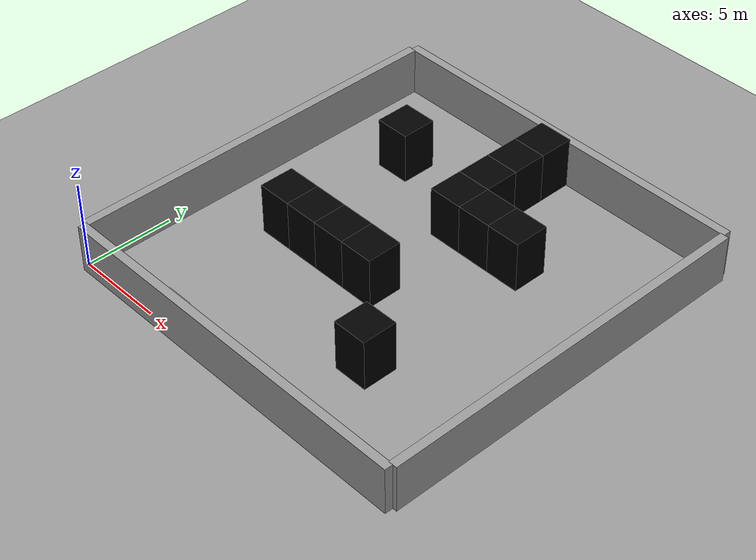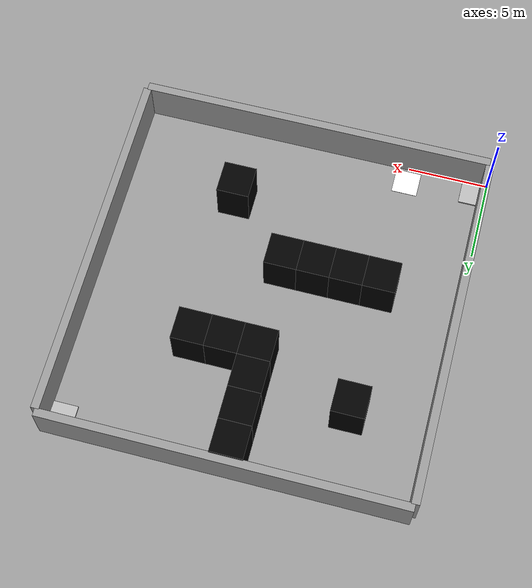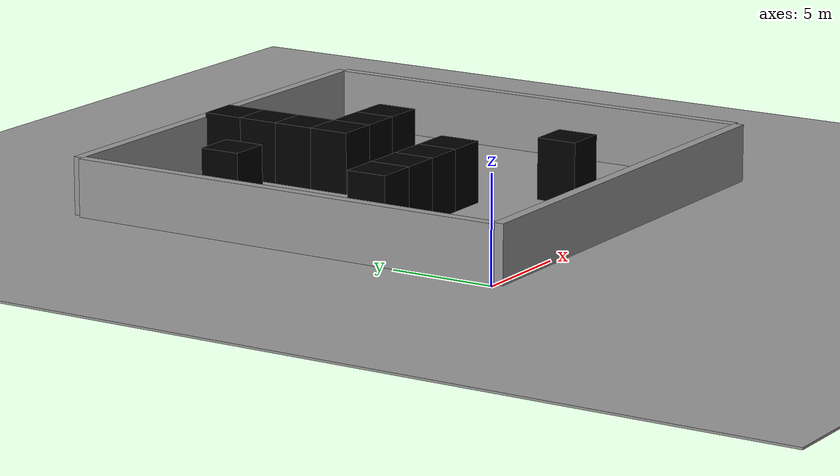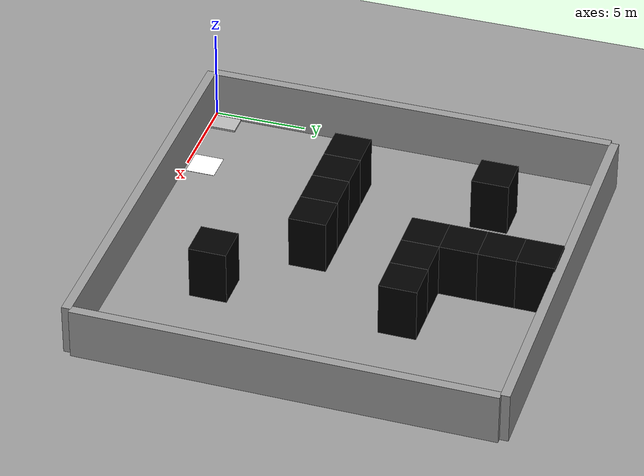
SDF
<sdf version="1.7">
 <world name="default">
  <plugin name="ros_interface_plugin" filename="librotors_gazebo_ros_interface_plugin.so"/>
  <light name="sun" type="directional">
   <pose>0 0 10 0 -0 0</pose>
   <diffuse>0.8 0.8 0.8 1</diffuse>
   <specular>0.2 0.2 0.2 1</specular>
   <attenuation>
    <range>1000</range>
    <constant>0.9</constant>
    <linear>0.01</linear>
    <quadratic>0.001</quadratic>
   </attenuation>
   <direction>-0.5 0.1 -0.9</direction>
   <spot><inner_angle>0</inner_angle><outer_angle>0</outer_angle><falloff>0</falloff></spot>
  </light>
  <model name="ground_plane">
   <static>1</static>
   <link name="link">
    <collision name="collision">
     <geometry><plane><normal>0 0 1</normal><size>100 100</size></plane></geometry>
     <surface><friction><ode><mu>100</mu><mu2>50</mu2></ode></friction></surface>
    </collision>
    <visual name="visual">
     <cast_shadows>0</cast_shadows>
     <geometry><plane><normal>0 0 1</normal><size>100 100</size></plane></geometry>
     <material>
      <script><uri>file://media/materials/scripts/gazebo.material</uri><name>Gazebo/Grey</name></script>
     </material>
    </visual>
   </link>
  </model>
  <gravity>0 0 -9.8</gravity>
  <magnetic_field>6e-06 2.3e-05 -4.2e-05</magnetic_field>
  <atmosphere type="adiabatic"/>
  <physics name="default_physics" default="0" type="ode">
   <max_step_size>0.01</max_step_size>
   <real_time_factor>1</real_time_factor>
   <real_time_update_rate>100</real_time_update_rate>
  </physics>
  <scene><ambient>0.4 0.4 0.4 1</ambient><background>0.7 0.7 0.7 1</background><shadows>1</shadows></scene>
  <audio><device>default</device></audio>
  <spherical_coordinates>
   <surface_model>EARTH_WGS84</surface_model>
   <latitude_deg>0</latitude_deg>
   <longitude_deg>0</longitude_deg>
   <elevation>0</elevation>
   <heading_deg>0</heading_deg>
  </spherical_coordinates>
  <model name="wood_cube_2_5cm">
   <link name="link">
    <pose>0 0 0.0125 0 -0 0</pose>
    <inertial>
     <mass>0.0073</mass>
     <inertia>
      <ixx>7.60417e-07</ixx>
      <ixy>0</ixy>
      <ixz>0</ixz>
      <iyy>7.60417e-07</iyy>
      <iyz>0</iyz>
      <izz>7.60417e-07</izz>
     </inertia>
    </inertial>
    <collision name="collision">
     <geometry><box><size>0.025 0.025 0.025</size></box></geometry>
     <surface>
      <contact>
       <poissons_ratio>0.347</poissons_ratio>
       <elastic_modulus>8.8e+09</elastic_modulus>
       <ode><kp>100000</kp><kd>100</kd><max_vel>100</max_vel><min_depth>0.001</min_depth></ode>
      </contact>
      <friction>
       <torsional>
        <coefficient>1</coefficient>
        <use_patch_radius>0</use_patch_radius>
        <surface_radius>0.01</surface_radius>
       </torsional>
      </friction>
     </surface>
    </collision>
    <visual name="visual">
     <geometry><box><size>0.025 0.025 0.025</size></box></geometry>
     <material>
      <script><uri>file://media/materials/scripts/gazebo.material</uri><name>Gazebo/Wood</name></script>
     </material>
    </visual>
   </link>
   <pose>9.08295 -8.46454 -0.000593 -1e-06 0.017205 0</pose>
  </model>
  <model name="walkway_metal_straight">
   <static>1</static>
   <link name="link">
    <collision name="collision">
     <pose>0 0.762 0.076075 0 -0 0</pose>
     <geometry><box><size>1.524 1.524 0.15215</size></box></geometry>
    </collision>
    <visual name="visual">
     <geometry>
      <mesh><scale>0.001 0.001 0.001</scale><uri>model://walkway_metal_straight/meshes/mesh.obj</uri></mesh>
     </geometry>
    </visual>
   </link>
   <pose>0.8 0 0 0 -0 0</pose>
  </model>
  <model name="ground_plane_0">
   <static>1</static>
   <link name="link">
    <collision name="collision">
     <geometry><plane><normal>0 0 1</normal><size>100 100</size></plane></geometry>
     <surface>
      <contact><collide_bitmask>65535</collide_bitmask></contact>
      <friction><ode><mu>100</mu><mu2>50</mu2></ode></friction>
     </surface>
    </collision>
    <visual name="visual">
     <cast_shadows>0</cast_shadows>
     <geometry><plane><normal>0 0 1</normal><size>100 100</size></plane></geometry>
     <material>
      <script><uri>file://media/materials/scripts/gazebo.material</uri><name>Gazebo/Grey</name></script>
     </material>
    </visual>
   </link>
   <pose>5.30691 -0.598783 0 0 -0 0</pose>
  </model>
  <model name="grey_wall_22">
   <link name="link">
    <pose>0 0 1.4 0 -0 0</pose>
    <inertial>
     <mass>1</mass>
     <inertia><ixx>1</ixx><ixy>0</ixy><ixz>0</ixz><iyy>1</iyy><iyz>0</iyz><izz>1</izz></inertia>
    </inertial>
    <visual name="visual">
     <cast_shadows>0</cast_shadows>
     <geometry><box><size>22 0.5 2.8</size></box></geometry>
     <material>
      <script>
       <uri>model://grey_wall/materials/scripts</uri>
       <uri>model://grey_wall/materials/textures</uri>
       <name>vrc/grey_wall</name>
      </script>
      <shader type="vertex"><normal_map>__default__</normal_map></shader>
      <ambient>1 1 1 1</ambient>
      <diffuse>1 1 1 1</diffuse>
      <specular>0 0 0 1</specular>
      <emissive>0 0 0 1</emissive>
     </material>
    </visual>
    <collision name="collision">
     <geometry><box><size>22 0.5 2.8</size></box></geometry>
     <surface>
      <friction>
       <ode><mu>1</mu><mu2>1</mu2><fdir1>0 0 0</fdir1><slip1>0</slip1><slip2>0</slip2></ode>
       <torsional>
        <coefficient>1</coefficient>
        <patch_radius>0</patch_radius>
        <surface_radius>0</surface_radius>
        <use_patch_radius>1</use_patch_radius>
        <ode><slip>0</slip></ode>
       </torsional>
      </friction>
      <bounce><restitution_coefficient>0</restitution_coefficient><threshold>1e+06</threshold></bounce>
      <contact>
       <collide_without_contact>0</collide_without_contact>
       <collide_without_contact_bitmask>1</collide_without_contact_bitmask>
       <collide_bitmask>1</collide_bitmask>
       <ode>
        <soft_cfm>0</soft_cfm>
        <soft_erp>0.2</soft_erp>
        <kp>1e+13</kp>
        <kd>1</kd>
        <max_vel>0.01</max_vel>
        <min_depth>0</min_depth>
       </ode>
       <bullet>
        <split_impulse>1</split_impulse>
        <split_impulse_penetration_threshold>-0.01</split_impulse_penetration_threshold>
        <soft_cfm>0</soft_cfm>
        <soft_erp>0.2</soft_erp>
        <kp>1e+13</kp>
        <kd>1</kd>
       </bullet>
      </contact>
     </surface>
    </collision>
   </link>
   <static>1</static>
   <pose>11.2 -0.2 0 0 -0 0</pose>
  </model>
  <model name="grey_wall_22_0">
   <link name="link">
    <pose>0 0 1.4 0 -0 0</pose>
    <inertial>
     <mass>1</mass>
     <inertia><ixx>1</ixx><ixy>0</ixy><ixz>0</ixz><iyy>1</iyy><iyz>0</iyz><izz>1</izz></inertia>
    </inertial>
    <visual name="visual">
     <cast_shadows>0</cast_shadows>
     <geometry><box><size>22 0.5 2.8</size></box></geometry>
     <material>
      <script>
       <uri>model://grey_wall/materials/scripts</uri>
       <uri>model://grey_wall/materials/textures</uri>
       <name>vrc/grey_wall</name>
      </script>
      <shader type="vertex"><normal_map>__default__</normal_map></shader>
      <ambient>1 1 1 1</ambient>
      <diffuse>1 1 1 1</diffuse>
      <specular>0 0 0 1</specular>
      <emissive>0 0 0 1</emissive>
     </material>
    </visual>
    <collision name="collision">
     <geometry><box><size>22 0.5 2.8</size></box></geometry>
     <surface>
      <friction>
       <ode><mu>1</mu><mu2>1</mu2><fdir1>0 0 0</fdir1><slip1>0</slip1><slip2>0</slip2></ode>
       <torsional>
        <coefficient>1</coefficient>
        <patch_radius>0</patch_radius>
        <surface_radius>0</surface_radius>
        <use_patch_radius>1</use_patch_radius>
        <ode><slip>0</slip></ode>
       </torsional>
      </friction>
      <bounce><restitution_coefficient>0</restitution_coefficient><threshold>1e+06</threshold></bounce>
      <contact>
       <collide_without_contact>0</collide_without_contact>
       <collide_without_contact_bitmask>1</collide_without_contact_bitmask>
       <collide_bitmask>1</collide_bitmask>
       <ode>
        <soft_cfm>0</soft_cfm>
        <soft_erp>0.2</soft_erp>
        <kp>1e+13</kp>
        <kd>1</kd>
        <max_vel>0.01</max_vel>
        <min_depth>0</min_depth>
       </ode>
       <bullet>
        <split_impulse>1</split_impulse>
        <split_impulse_penetration_threshold>-0.01</split_impulse_penetration_threshold>
        <soft_cfm>0</soft_cfm>
        <soft_erp>0.2</soft_erp>
        <kp>1e+13</kp>
        <kd>1</kd>
       </bullet>
      </contact>
     </surface>
    </collision>
   </link>
   <static>1</static>
   <pose>11.2 22.2 0 0 -0 0</pose>
  </model>
  <model name="grey_wall_22_1">
   <link name="link">
    <pose>0 0 1.4 0 -0 0</pose>
    <inertial>
     <mass>1</mass>
     <inertia><ixx>1</ixx><ixy>0</ixy><ixz>0</ixz><iyy>1</iyy><iyz>0</iyz><izz>1</izz></inertia>
    </inertial>
    <visual name="visual">
     <cast_shadows>0</cast_shadows>
     <geometry><box><size>22 0.5 2.8</size></box></geometry>
     <material>
      <script>
       <uri>model://grey_wall/materials/scripts</uri>
       <uri>model://grey_wall/materials/textures</uri>
       <name>vrc/grey_wall</name>
      </script>
      <shader type="vertex"><normal_map>__default__</normal_map></shader>
      <ambient>1 1 1 1</ambient>
      <diffuse>1 1 1 1</diffuse>
      <specular>0 0 0 1</specular>
      <emissive>0 0 0 1</emissive>
     </material>
    </visual>
    <collision name="collision">
     <geometry><box><size>22 0.5 2.8</size></box></geometry>
     <surface>
      <friction>
       <ode><mu>1</mu><mu2>1</mu2><fdir1>0 0 0</fdir1><slip1>0</slip1><slip2>0</slip2></ode>
       <torsional>
        <coefficient>1</coefficient>
        <patch_radius>0</patch_radius>
        <surface_radius>0</surface_radius>
        <use_patch_radius>1</use_patch_radius>
        <ode><slip>0</slip></ode>
       </torsional>
      </friction>
      <bounce><restitution_coefficient>0</restitution_coefficient><threshold>1e+06</threshold></bounce>
      <contact>
       <collide_without_contact>0</collide_without_contact>
       <collide_without_contact_bitmask>1</collide_without_contact_bitmask>
       <collide_bitmask>1</collide_bitmask>
       <ode>
        <soft_cfm>0</soft_cfm>
        <soft_erp>0.2</soft_erp>
        <kp>1e+13</kp>
        <kd>1</kd>
        <max_vel>0.01</max_vel>
        <min_depth>0</min_depth>
       </ode>
       <bullet>
        <split_impulse>1</split_impulse>
        <split_impulse_penetration_threshold>-0.01</split_impulse_penetration_threshold>
        <soft_cfm>0</soft_cfm>
        <soft_erp>0.2</soft_erp>
        <kp>1e+13</kp>
        <kd>1</kd>
       </bullet>
      </contact>
     </surface>
    </collision>
   </link>
   <static>1</static>
   <pose>22.2 11 0 0 -0 1.57</pose>
  </model>
  <model name="grey_wall_22_2">
   <link name="link">
    <pose>0 0 1.4 0 -0 0</pose>
    <inertial>
     <mass>1</mass>
     <inertia><ixx>1</ixx><ixy>0</ixy><ixz>0</ixz><iyy>1</iyy><iyz>0</iyz><izz>1</izz></inertia>
    </inertial>
    <visual name="visual">
     <cast_shadows>0</cast_shadows>
     <geometry><box><size>22 0.5 2.8</size></box></geometry>
     <material>
      <script>
       <uri>model://grey_wall/materials/scripts</uri>
       <uri>model://grey_wall/materials/textures</uri>
       <name>vrc/grey_wall</name>
      </script>
      <shader type="vertex"><normal_map>__default__</normal_map></shader>
      <ambient>1 1 1 1</ambient>
      <diffuse>1 1 1 1</diffuse>
      <specular>0 0 0 1</specular>
      <emissive>0 0 0 1</emissive>
     </material>
    </visual>
    <collision name="collision">
     <geometry><box><size>22 0.5 2.8</size></box></geometry>
     <surface>
      <friction>
       <ode><mu>1</mu><mu2>1</mu2><fdir1>0 0 0</fdir1><slip1>0</slip1><slip2>0</slip2></ode>
       <torsional>
        <coefficient>1</coefficient>
        <patch_radius>0</patch_radius>
        <surface_radius>0</surface_radius>
        <use_patch_radius>1</use_patch_radius>
        <ode><slip>0</slip></ode>
       </torsional>
      </friction>
      <bounce><restitution_coefficient>0</restitution_coefficient><threshold>1e+06</threshold></bounce>
      <contact>
       <collide_without_contact>0</collide_without_contact>
       <collide_without_contact_bitmask>1</collide_without_contact_bitmask>
       <collide_bitmask>1</collide_bitmask>
       <ode>
        <soft_cfm>0</soft_cfm>
        <soft_erp>0.2</soft_erp>
        <kp>1e+13</kp>
        <kd>1</kd>
        <max_vel>0.01</max_vel>
        <min_depth>0</min_depth>
       </ode>
       <bullet>
        <split_impulse>1</split_impulse>
        <split_impulse_penetration_threshold>-0.01</split_impulse_penetration_threshold>
        <soft_cfm>0</soft_cfm>
        <soft_erp>0.2</soft_erp>
        <kp>1e+13</kp>
        <kd>1</kd>
       </bullet>
      </contact>
     </surface>
    </collision>
   </link>
   <static>1</static>
   <pose>0.2 11 0 0 -0 1.57</pose>
  </model>
  <model name="walkway_metal_straight_0">
   <static>1</static>
   <link name="link">
    <collision name="collision">
     <pose>0 0.762 0.076075 0 -0 0</pose>
     <geometry><box><size>1.524 1.524 0.15215</size></box></geometry>
    </collision>
    <visual name="visual">
     <geometry>
      <mesh><scale>0.001 0.001 0.001</scale><uri>model://walkway_metal_straight/meshes/mesh.obj</uri></mesh>
     </geometry>
    </visual>
   </link>
   <pose>21.2 20.5 0 0 -0 0</pose>
  </model>
  <model name="brick_black_2x2">
   <link name="chassis">
    <pose>0 0 1.5 0 -0 0</pose>
    <inertial>
     <mass>1</mass>
     <inertia><ixx>1</ixx><ixy>0</ixy><ixz>0</ixz><iyy>1</iyy><iyz>0</iyz><izz>1</izz></inertia>
    </inertial>
    <visual name="visual">
     <geometry><mesh><uri>model://brick_box_3x1x3/meshes/simple_box.dae</uri><scale>2 2 3</scale></mesh></geometry>
     <material>
      <script>
       <uri>model://brick_box_3x1x3/materials/scripts</uri>
       <uri>model://brick_box_3x1x3/materials/textures</uri>
       <name>BrickBox/Diffuse</name>
      </script>
      <shader type="vertex"><normal_map>__default__</normal_map></shader>
      <ambient>0 0 0 1</ambient>
      <diffuse>0 0 0 1</diffuse>
      <specular>0 0 0 1</specular>
      <emissive>0 0 0 1</emissive>
      <lighting>1</lighting>
     </material>
    </visual>
    <collision name="collision">
     <geometry><box><size>2 2 3</size></box></geometry>
     <surface>
      <friction>
       <ode><mu>1</mu><mu2>1</mu2><fdir1>0 0 0</fdir1><slip1>0</slip1><slip2>0</slip2></ode>
       <torsional>
        <coefficient>1</coefficient>
        <patch_radius>0</patch_radius>
        <surface_radius>0</surface_radius>
        <use_patch_radius>1</use_patch_radius>
        <ode><slip>0</slip></ode>
       </torsional>
      </friction>
      <bounce><restitution_coefficient>0</restitution_coefficient><threshold>1e+06</threshold></bounce>
      <contact>
       <collide_without_contact>0</collide_without_contact>
       <collide_without_contact_bitmask>1</collide_without_contact_bitmask>
       <collide_bitmask>1</collide_bitmask>
       <ode>
        <soft_cfm>0</soft_cfm>
        <soft_erp>0.2</soft_erp>
        <kp>1e+13</kp>
        <kd>1</kd>
        <max_vel>0.01</max_vel>
        <min_depth>0</min_depth>
       </ode>
       <bullet>
        <split_impulse>1</split_impulse>
        <split_impulse_penetration_threshold>-0.01</split_impulse_penetration_threshold>
        <soft_cfm>0</soft_cfm>
        <soft_erp>0.2</soft_erp>
        <kp>1e+13</kp>
        <kd>1</kd>
       </bullet>
      </contact>
     </surface>
    </collision>
   </link>
   <static>1</static>
   <pose>15 5 0 0 -0 0</pose>
  </model>
  <model name="brick_black_2x2_0">
   <link name="chassis">
    <pose>0 0 1.5 0 -0 0</pose>
    <inertial>
     <mass>1</mass>
     <inertia><ixx>1</ixx><ixy>0</ixy><ixz>0</ixz><iyy>1</iyy><iyz>0</iyz><izz>1</izz></inertia>
    </inertial>
    <visual name="visual">
     <geometry><mesh><uri>model://brick_box_3x1x3/meshes/simple_box.dae</uri><scale>2 2 3</scale></mesh></geometry>
     <material>
      <script>
       <uri>model://brick_box_3x1x3/materials/scripts</uri>
       <uri>model://brick_box_3x1x3/materials/textures</uri>
       <name>BrickBox/Diffuse</name>
      </script>
      <shader type="vertex"><normal_map>__default__</normal_map></shader>
      <ambient>0 0 0 1</ambient>
      <diffuse>0 0 0 1</diffuse>
      <specular>0 0 0 1</specular>
      <emissive>0 0 0 1</emissive>
      <lighting>1</lighting>
     </material>
    </visual>
    <collision name="collision">
     <geometry><box><size>2 2 3</size></box></geometry>
     <surface>
      <friction>
       <ode><mu>1</mu><mu2>1</mu2><fdir1>0 0 0</fdir1><slip1>0</slip1><slip2>0</slip2></ode>
       <torsional>
        <coefficient>1</coefficient>
        <patch_radius>0</patch_radius>
        <surface_radius>0</surface_radius>
        <use_patch_radius>1</use_patch_radius>
        <ode><slip>0</slip></ode>
       </torsional>
      </friction>
      <bounce><restitution_coefficient>0</restitution_coefficient><threshold>1e+06</threshold></bounce>
      <contact>
       <collide_without_contact>0</collide_without_contact>
       <collide_without_contact_bitmask>1</collide_without_contact_bitmask>
       <collide_bitmask>1</collide_bitmask>
       <ode>
        <soft_cfm>0</soft_cfm>
        <soft_erp>0.2</soft_erp>
        <kp>1e+13</kp>
        <kd>1</kd>
        <max_vel>0.01</max_vel>
        <min_depth>0</min_depth>
       </ode>
       <bullet>
        <split_impulse>1</split_impulse>
        <split_impulse_penetration_threshold>-0.01</split_impulse_penetration_threshold>
        <soft_cfm>0</soft_cfm>
        <soft_erp>0.2</soft_erp>
        <kp>1e+13</kp>
        <kd>1</kd>
       </bullet>
      </contact>
     </surface>
    </collision>
   </link>
   <static>1</static>
   <pose>5 17 0 0 -0 0</pose>
  </model>
  <model name="brick_black_2x2_1">
   <link name="chassis">
    <pose>0 0 1.5 0 -0 0</pose>
    <inertial>
     <mass>1</mass>
     <inertia><ixx>1</ixx><ixy>0</ixy><ixz>0</ixz><iyy>1</iyy><iyz>0</iyz><izz>1</izz></inertia>
    </inertial>
    <visual name="visual">
     <geometry><mesh><uri>model://brick_box_3x1x3/meshes/simple_box.dae</uri><scale>2 2 3</scale></mesh></geometry>
     <material>
      <script>
       <uri>model://brick_box_3x1x3/materials/scripts</uri>
       <uri>model://brick_box_3x1x3/materials/textures</uri>
       <name>BrickBox/Diffuse</name>
      </script>
      <shader type="vertex"><normal_map>__default__</normal_map></shader>
      <ambient>0 0 0 1</ambient>
      <diffuse>0 0 0 1</diffuse>
      <specular>0 0 0 1</specular>
      <emissive>0 0 0 1</emissive>
      <lighting>1</lighting>
     </material>
    </visual>
    <collision name="collision">
     <geometry><box><size>2 2 3</size></box></geometry>
     <surface>
      <friction>
       <ode><mu>1</mu><mu2>1</mu2><fdir1>0 0 0</fdir1><slip1>0</slip1><slip2>0</slip2></ode>
       <torsional>
        <coefficient>1</coefficient>
        <patch_radius>0</patch_radius>
        <surface_radius>0</surface_radius>
        <use_patch_radius>1</use_patch_radius>
        <ode><slip>0</slip></ode>
       </torsional>
      </friction>
      <bounce><restitution_coefficient>0</restitution_coefficient><threshold>1e+06</threshold></bounce>
      <contact>
       <collide_without_contact>0</collide_without_contact>
       <collide_without_contact_bitmask>1</collide_without_contact_bitmask>
       <collide_bitmask>1</collide_bitmask>
       <ode>
        <soft_cfm>0</soft_cfm>
        <soft_erp>0.2</soft_erp>
        <kp>1e+13</kp>
        <kd>1</kd>
        <max_vel>0.01</max_vel>
        <min_depth>0</min_depth>
       </ode>
       <bullet>
        <split_impulse>1</split_impulse>
        <split_impulse_penetration_threshold>-0.01</split_impulse_penetration_threshold>
        <soft_cfm>0</soft_cfm>
        <soft_erp>0.2</soft_erp>
        <kp>1e+13</kp>
        <kd>1</kd>
       </bullet>
      </contact>
     </surface>
    </collision>
   </link>
   <static>1</static>
   <pose>5 9 0 0 -0 0</pose>
  </model>
  <model name="brick_black_2x2_2">
   <link name="chassis">
    <pose>0 0 1.5 0 -0 0</pose>
    <inertial>
     <mass>1</mass>
     <inertia><ixx>1</ixx><ixy>0</ixy><ixz>0</ixz><iyy>1</iyy><iyz>0</iyz><izz>1</izz></inertia>
    </inertial>
    <visual name="visual">
     <geometry><mesh><uri>model://brick_box_3x1x3/meshes/simple_box.dae</uri><scale>2 2 3</scale></mesh></geometry>
     <material>
      <script>
       <uri>model://brick_box_3x1x3/materials/scripts</uri>
       <uri>model://brick_box_3x1x3/materials/textures</uri>
       <name>BrickBox/Diffuse</name>
      </script>
      <shader type="vertex"><normal_map>__default__</normal_map></shader>
      <ambient>0 0 0 1</ambient>
      <diffuse>0 0 0 1</diffuse>
      <specular>0 0 0 1</specular>
      <emissive>0 0 0 1</emissive>
      <lighting>1</lighting>
     </material>
    </visual>
    <collision name="collision">
     <geometry><box><size>2 2 3</size></box></geometry>
     <surface>
      <friction>
       <ode><mu>1</mu><mu2>1</mu2><fdir1>0 0 0</fdir1><slip1>0</slip1><slip2>0</slip2></ode>
       <torsional>
        <coefficient>1</coefficient>
        <patch_radius>0</patch_radius>
        <surface_radius>0</surface_radius>
        <use_patch_radius>1</use_patch_radius>
        <ode><slip>0</slip></ode>
       </torsional>
      </friction>
      <bounce><restitution_coefficient>0</restitution_coefficient><threshold>1e+06</threshold></bounce>
      <contact>
       <collide_without_contact>0</collide_without_contact>
       <collide_without_contact_bitmask>1</collide_without_contact_bitmask>
       <collide_bitmask>1</collide_bitmask>
       <ode>
        <soft_cfm>0</soft_cfm>
        <soft_erp>0.2</soft_erp>
        <kp>1e+13</kp>
        <kd>1</kd>
        <max_vel>0.01</max_vel>
        <min_depth>0</min_depth>
       </ode>
       <bullet>
        <split_impulse>1</split_impulse>
        <split_impulse_penetration_threshold>-0.01</split_impulse_penetration_threshold>
        <soft_cfm>0</soft_cfm>
        <soft_erp>0.2</soft_erp>
        <kp>1e+13</kp>
        <kd>1</kd>
       </bullet>
      </contact>
     </surface>
    </collision>
   </link>
   <static>1</static>
   <pose>7 9 0 0 -0 0</pose>
  </model>
  <model name="brick_black_2x2_3">
   <link name="chassis">
    <pose>0 0 1.5 0 -0 0</pose>
    <inertial>
     <mass>1</mass>
     <inertia><ixx>1</ixx><ixy>0</ixy><ixz>0</ixz><iyy>1</iyy><iyz>0</iyz><izz>1</izz></inertia>
    </inertial>
    <visual name="visual">
     <geometry><mesh><uri>model://brick_box_3x1x3/meshes/simple_box.dae</uri><scale>2 2 3</scale></mesh></geometry>
     <material>
      <script>
       <uri>model://brick_box_3x1x3/materials/scripts</uri>
       <uri>model://brick_box_3x1x3/materials/textures</uri>
       <name>BrickBox/Diffuse</name>
      </script>
      <shader type="vertex"><normal_map>__default__</normal_map></shader>
      <ambient>0 0 0 1</ambient>
      <diffuse>0 0 0 1</diffuse>
      <specular>0 0 0 1</specular>
      <emissive>0 0 0 1</emissive>
      <lighting>1</lighting>
     </material>
    </visual>
    <collision name="collision">
     <geometry><box><size>2 2 3</size></box></geometry>
     <surface>
      <friction>
       <ode><mu>1</mu><mu2>1</mu2><fdir1>0 0 0</fdir1><slip1>0</slip1><slip2>0</slip2></ode>
       <torsional>
        <coefficient>1</coefficient>
        <patch_radius>0</patch_radius>
        <surface_radius>0</surface_radius>
        <use_patch_radius>1</use_patch_radius>
        <ode><slip>0</slip></ode>
       </torsional>
      </friction>
      <bounce><restitution_coefficient>0</restitution_coefficient><threshold>1e+06</threshold></bounce>
      <contact>
       <collide_without_contact>0</collide_without_contact>
       <collide_without_contact_bitmask>1</collide_without_contact_bitmask>
       <collide_bitmask>1</collide_bitmask>
       <ode>
        <soft_cfm>0</soft_cfm>
        <soft_erp>0.2</soft_erp>
        <kp>1e+13</kp>
        <kd>1</kd>
        <max_vel>0.01</max_vel>
        <min_depth>0</min_depth>
       </ode>
       <bullet>
        <split_impulse>1</split_impulse>
        <split_impulse_penetration_threshold>-0.01</split_impulse_penetration_threshold>
        <soft_cfm>0</soft_cfm>
        <soft_erp>0.2</soft_erp>
        <kp>1e+13</kp>
        <kd>1</kd>
       </bullet>
      </contact>
     </surface>
    </collision>
   </link>
   <static>1</static>
   <pose>9 9 0 0 -0 0</pose>
  </model>
  <model name="brick_black_2x2_4">
   <link name="chassis">
    <pose>0 0 1.5 0 -0 0</pose>
    <inertial>
     <mass>1</mass>
     <inertia><ixx>1</ixx><ixy>0</ixy><ixz>0</ixz><iyy>1</iyy><iyz>0</iyz><izz>1</izz></inertia>
    </inertial>
    <visual name="visual">
     <geometry><mesh><uri>model://brick_box_3x1x3/meshes/simple_box.dae</uri><scale>2 2 3</scale></mesh></geometry>
     <material>
      <script>
       <uri>model://brick_box_3x1x3/materials/scripts</uri>
       <uri>model://brick_box_3x1x3/materials/textures</uri>
       <name>BrickBox/Diffuse</name>
      </script>
      <shader type="vertex"><normal_map>__default__</normal_map></shader>
      <ambient>0 0 0 1</ambient>
      <diffuse>0 0 0 1</diffuse>
      <specular>0 0 0 1</specular>
      <emissive>0 0 0 1</emissive>
      <lighting>1</lighting>
     </material>
    </visual>
    <collision name="collision">
     <geometry><box><size>2 2 3</size></box></geometry>
     <surface>
      <friction>
       <ode><mu>1</mu><mu2>1</mu2><fdir1>0 0 0</fdir1><slip1>0</slip1><slip2>0</slip2></ode>
       <torsional>
        <coefficient>1</coefficient>
        <patch_radius>0</patch_radius>
        <surface_radius>0</surface_radius>
        <use_patch_radius>1</use_patch_radius>
        <ode><slip>0</slip></ode>
       </torsional>
      </friction>
      <bounce><restitution_coefficient>0</restitution_coefficient><threshold>1e+06</threshold></bounce>
      <contact>
       <collide_without_contact>0</collide_without_contact>
       <collide_without_contact_bitmask>1</collide_without_contact_bitmask>
       <collide_bitmask>1</collide_bitmask>
       <ode>
        <soft_cfm>0</soft_cfm>
        <soft_erp>0.2</soft_erp>
        <kp>1e+13</kp>
        <kd>1</kd>
        <max_vel>0.01</max_vel>
        <min_depth>0</min_depth>
       </ode>
       <bullet>
        <split_impulse>1</split_impulse>
        <split_impulse_penetration_threshold>-0.01</split_impulse_penetration_threshold>
        <soft_cfm>0</soft_cfm>
        <soft_erp>0.2</soft_erp>
        <kp>1e+13</kp>
        <kd>1</kd>
       </bullet>
      </contact>
     </surface>
    </collision>
   </link>
   <static>1</static>
   <pose>11 9 0 0 -0 0</pose>
  </model>
  <model name="brick_black_2x2_5">
   <link name="chassis">
    <pose>0 0 1.5 0 -0 0</pose>
    <inertial>
     <mass>1</mass>
     <inertia><ixx>1</ixx><ixy>0</ixy><ixz>0</ixz><iyy>1</iyy><iyz>0</iyz><izz>1</izz></inertia>
    </inertial>
    <visual name="visual">
     <geometry><mesh><uri>model://brick_box_3x1x3/meshes/simple_box.dae</uri><scale>2 2 3</scale></mesh></geometry>
     <material>
      <script>
       <uri>model://brick_box_3x1x3/materials/scripts</uri>
       <uri>model://brick_box_3x1x3/materials/textures</uri>
       <name>BrickBox/Diffuse</name>
      </script>
      <shader type="vertex"><normal_map>__default__</normal_map></shader>
      <ambient>0 0 0 1</ambient>
      <diffuse>0 0 0 1</diffuse>
      <specular>0 0 0 1</specular>
      <emissive>0 0 0 1</emissive>
      <lighting>1</lighting>
     </material>
    </visual>
    <collision name="collision">
     <geometry><box><size>2 2 3</size></box></geometry>
     <surface>
      <friction>
       <ode><mu>1</mu><mu2>1</mu2><fdir1>0 0 0</fdir1><slip1>0</slip1><slip2>0</slip2></ode>
       <torsional>
        <coefficient>1</coefficient>
        <patch_radius>0</patch_radius>
        <surface_radius>0</surface_radius>
        <use_patch_radius>1</use_patch_radius>
        <ode><slip>0</slip></ode>
       </torsional>
      </friction>
      <bounce><restitution_coefficient>0</restitution_coefficient><threshold>1e+06</threshold></bounce>
      <contact>
       <collide_without_contact>0</collide_without_contact>
       <collide_without_contact_bitmask>1</collide_without_contact_bitmask>
       <collide_bitmask>1</collide_bitmask>
       <ode>
        <soft_cfm>0</soft_cfm>
        <soft_erp>0.2</soft_erp>
        <kp>1e+13</kp>
        <kd>1</kd>
        <max_vel>0.01</max_vel>
        <min_depth>0</min_depth>
       </ode>
       <bullet>
        <split_impulse>1</split_impulse>
        <split_impulse_penetration_threshold>-0.01</split_impulse_penetration_threshold>
        <soft_cfm>0</soft_cfm>
        <soft_erp>0.2</soft_erp>
        <kp>1e+13</kp>
        <kd>1</kd>
       </bullet>
      </contact>
     </surface>
    </collision>
   </link>
   <static>1</static>
   <pose>11 21 0 0 -0 0</pose>
  </model>
  <model name="brick_black_2x2_6">
   <link name="chassis">
    <pose>0 0 1.5 0 -0 0</pose>
    <inertial>
     <mass>1</mass>
     <inertia><ixx>1</ixx><ixy>0</ixy><ixz>0</ixz><iyy>1</iyy><iyz>0</iyz><izz>1</izz></inertia>
    </inertial>
    <visual name="visual">
     <geometry><mesh><uri>model://brick_box_3x1x3/meshes/simple_box.dae</uri><scale>2 2 3</scale></mesh></geometry>
     <material>
      <script>
       <uri>model://brick_box_3x1x3/materials/scripts</uri>
       <uri>model://brick_box_3x1x3/materials/textures</uri>
       <name>BrickBox/Diffuse</name>
      </script>
      <shader type="vertex"><normal_map>__default__</normal_map></shader>
      <ambient>0 0 0 1</ambient>
      <diffuse>0 0 0 1</diffuse>
      <specular>0 0 0 1</specular>
      <emissive>0 0 0 1</emissive>
      <lighting>1</lighting>
     </material>
    </visual>
    <collision name="collision">
     <geometry><box><size>2 2 3</size></box></geometry>
     <surface>
      <friction>
       <ode><mu>1</mu><mu2>1</mu2><fdir1>0 0 0</fdir1><slip1>0</slip1><slip2>0</slip2></ode>
       <torsional>
        <coefficient>1</coefficient>
        <patch_radius>0</patch_radius>
        <surface_radius>0</surface_radius>
        <use_patch_radius>1</use_patch_radius>
        <ode><slip>0</slip></ode>
       </torsional>
      </friction>
      <bounce><restitution_coefficient>0</restitution_coefficient><threshold>1e+06</threshold></bounce>
      <contact>
       <collide_without_contact>0</collide_without_contact>
       <collide_without_contact_bitmask>1</collide_without_contact_bitmask>
       <collide_bitmask>1</collide_bitmask>
       <ode>
        <soft_cfm>0</soft_cfm>
        <soft_erp>0.2</soft_erp>
        <kp>1e+13</kp>
        <kd>1</kd>
        <max_vel>0.01</max_vel>
        <min_depth>0</min_depth>
       </ode>
       <bullet>
        <split_impulse>1</split_impulse>
        <split_impulse_penetration_threshold>-0.01</split_impulse_penetration_threshold>
        <soft_cfm>0</soft_cfm>
        <soft_erp>0.2</soft_erp>
        <kp>1e+13</kp>
        <kd>1</kd>
       </bullet>
      </contact>
     </surface>
    </collision>
   </link>
   <static>1</static>
   <pose>11 19 0 0 -0 0</pose>
  </model>
  <model name="brick_black_2x2_7">
   <link name="chassis">
    <pose>0 0 1.5 0 -0 0</pose>
    <inertial>
     <mass>1</mass>
     <inertia><ixx>1</ixx><ixy>0</ixy><ixz>0</ixz><iyy>1</iyy><iyz>0</iyz><izz>1</izz></inertia>
    </inertial>
    <visual name="visual">
     <geometry><mesh><uri>model://brick_box_3x1x3/meshes/simple_box.dae</uri><scale>2 2 3</scale></mesh></geometry>
     <material>
      <script>
       <uri>model://brick_box_3x1x3/materials/scripts</uri>
       <uri>model://brick_box_3x1x3/materials/textures</uri>
       <name>BrickBox/Diffuse</name>
      </script>
      <shader type="vertex"><normal_map>__default__</normal_map></shader>
      <ambient>0 0 0 1</ambient>
      <diffuse>0 0 0 1</diffuse>
      <specular>0 0 0 1</specular>
      <emissive>0 0 0 1</emissive>
      <lighting>1</lighting>
     </material>
    </visual>
    <collision name="collision">
     <geometry><box><size>2 2 3</size></box></geometry>
     <surface>
      <friction>
       <ode><mu>1</mu><mu2>1</mu2><fdir1>0 0 0</fdir1><slip1>0</slip1><slip2>0</slip2></ode>
       <torsional>
        <coefficient>1</coefficient>
        <patch_radius>0</patch_radius>
        <surface_radius>0</surface_radius>
        <use_patch_radius>1</use_patch_radius>
        <ode><slip>0</slip></ode>
       </torsional>
      </friction>
      <bounce><restitution_coefficient>0</restitution_coefficient><threshold>1e+06</threshold></bounce>
      <contact>
       <collide_without_contact>0</collide_without_contact>
       <collide_without_contact_bitmask>1</collide_without_contact_bitmask>
       <collide_bitmask>1</collide_bitmask>
       <ode>
        <soft_cfm>0</soft_cfm>
        <soft_erp>0.2</soft_erp>
        <kp>1e+13</kp>
        <kd>1</kd>
        <max_vel>0.01</max_vel>
        <min_depth>0</min_depth>
       </ode>
       <bullet>
        <split_impulse>1</split_impulse>
        <split_impulse_penetration_threshold>-0.01</split_impulse_penetration_threshold>
        <soft_cfm>0</soft_cfm>
        <soft_erp>0.2</soft_erp>
        <kp>1e+13</kp>
        <kd>1</kd>
       </bullet>
      </contact>
     </surface>
    </collision>
   </link>
   <static>1</static>
   <pose>11 17 0 0 -0 0</pose>
  </model>
  <model name="brick_black_2x2_8">
   <link name="chassis">
    <pose>0 0 1.5 0 -0 0</pose>
    <inertial>
     <mass>1</mass>
     <inertia><ixx>1</ixx><ixy>0</ixy><ixz>0</ixz><iyy>1</iyy><iyz>0</iyz><izz>1</izz></inertia>
    </inertial>
    <visual name="visual">
     <geometry><mesh><uri>model://brick_box_3x1x3/meshes/simple_box.dae</uri><scale>2 2 3</scale></mesh></geometry>
     <material>
      <script>
       <uri>model://brick_box_3x1x3/materials/scripts</uri>
       <uri>model://brick_box_3x1x3/materials/textures</uri>
       <name>BrickBox/Diffuse</name>
      </script>
      <shader type="vertex"><normal_map>__default__</normal_map></shader>
      <ambient>0 0 0 1</ambient>
      <diffuse>0 0 0 1</diffuse>
      <specular>0 0 0 1</specular>
      <emissive>0 0 0 1</emissive>
      <lighting>1</lighting>
     </material>
    </visual>
    <collision name="collision">
     <geometry><box><size>2 2 3</size></box></geometry>
     <surface>
      <friction>
       <ode><mu>1</mu><mu2>1</mu2><fdir1>0 0 0</fdir1><slip1>0</slip1><slip2>0</slip2></ode>
       <torsional>
        <coefficient>1</coefficient>
        <patch_radius>0</patch_radius>
        <surface_radius>0</surface_radius>
        <use_patch_radius>1</use_patch_radius>
        <ode><slip>0</slip></ode>
       </torsional>
      </friction>
      <bounce><restitution_coefficient>0</restitution_coefficient><threshold>1e+06</threshold></bounce>
      <contact>
       <collide_without_contact>0</collide_without_contact>
       <collide_without_contact_bitmask>1</collide_without_contact_bitmask>
       <collide_bitmask>1</collide_bitmask>
       <ode>
        <soft_cfm>0</soft_cfm>
        <soft_erp>0.2</soft_erp>
        <kp>1e+13</kp>
        <kd>1</kd>
        <max_vel>0.01</max_vel>
        <min_depth>0</min_depth>
       </ode>
       <bullet>
        <split_impulse>1</split_impulse>
        <split_impulse_penetration_threshold>-0.01</split_impulse_penetration_threshold>
        <soft_cfm>0</soft_cfm>
        <soft_erp>0.2</soft_erp>
        <kp>1e+13</kp>
        <kd>1</kd>
       </bullet>
      </contact>
     </surface>
    </collision>
   </link>
   <static>1</static>
   <pose>11 15 0 0 -0 0</pose>
  </model>
  <model name="brick_black_2x2_9">
   <link name="chassis">
    <pose>0 0 1.5 0 -0 0</pose>
    <inertial>
     <mass>1</mass>
     <inertia><ixx>1</ixx><ixy>0</ixy><ixz>0</ixz><iyy>1</iyy><iyz>0</iyz><izz>1</izz></inertia>
    </inertial>
    <visual name="visual">
     <geometry><mesh><uri>model://brick_box_3x1x3/meshes/simple_box.dae</uri><scale>2 2 3</scale></mesh></geometry>
     <material>
      <script>
       <uri>model://brick_box_3x1x3/materials/scripts</uri>
       <uri>model://brick_box_3x1x3/materials/textures</uri>
       <name>BrickBox/Diffuse</name>
      </script>
      <shader type="vertex"><normal_map>__default__</normal_map></shader>
      <ambient>0 0 0 1</ambient>
      <diffuse>0 0 0 1</diffuse>
      <specular>0 0 0 1</specular>
      <emissive>0 0 0 1</emissive>
      <lighting>1</lighting>
     </material>
    </visual>
    <collision name="collision">
     <geometry><box><size>2 2 3</size></box></geometry>
     <surface>
      <friction>
       <ode><mu>1</mu><mu2>1</mu2><fdir1>0 0 0</fdir1><slip1>0</slip1><slip2>0</slip2></ode>
       <torsional>
        <coefficient>1</coefficient>
        <patch_radius>0</patch_radius>
        <surface_radius>0</surface_radius>
        <use_patch_radius>1</use_patch_radius>
        <ode><slip>0</slip></ode>
       </torsional>
      </friction>
      <bounce><restitution_coefficient>0</restitution_coefficient><threshold>1e+06</threshold></bounce>
      <contact>
       <collide_without_contact>0</collide_without_contact>
       <collide_without_contact_bitmask>1</collide_without_contact_bitmask>
       <collide_bitmask>1</collide_bitmask>
       <ode>
        <soft_cfm>0</soft_cfm>
        <soft_erp>0.2</soft_erp>
        <kp>1e+13</kp>
        <kd>1</kd>
        <max_vel>0.01</max_vel>
        <min_depth>0</min_depth>
       </ode>
       <bullet>
        <split_impulse>1</split_impulse>
        <split_impulse_penetration_threshold>-0.01</split_impulse_penetration_threshold>
        <soft_cfm>0</soft_cfm>
        <soft_erp>0.2</soft_erp>
        <kp>1e+13</kp>
        <kd>1</kd>
       </bullet>
      </contact>
     </surface>
    </collision>
   </link>
   <static>1</static>
   <pose>15 15 0 0 -0 0</pose>
  </model>
  <model name="brick_black_2x2_10">
   <link name="chassis">
    <pose>0 0 1.5 0 -0 0</pose>
    <inertial>
     <mass>1</mass>
     <inertia><ixx>1</ixx><ixy>0</ixy><ixz>0</ixz><iyy>1</iyy><iyz>0</iyz><izz>1</izz></inertia>
    </inertial>
    <visual name="visual">
     <geometry><mesh><uri>model://brick_box_3x1x3/meshes/simple_box.dae</uri><scale>2 2 3</scale></mesh></geometry>
     <material>
      <script>
       <uri>model://brick_box_3x1x3/materials/scripts</uri>
       <uri>model://brick_box_3x1x3/materials/textures</uri>
       <name>BrickBox/Diffuse</name>
      </script>
      <shader type="vertex"><normal_map>__default__</normal_map></shader>
      <ambient>0 0 0 1</ambient>
      <diffuse>0 0 0 1</diffuse>
      <specular>0 0 0 1</specular>
      <emissive>0 0 0 1</emissive>
      <lighting>1</lighting>
     </material>
    </visual>
    <collision name="collision">
     <geometry><box><size>2 2 3</size></box></geometry>
     <surface>
      <friction>
       <ode><mu>1</mu><mu2>1</mu2><fdir1>0 0 0</fdir1><slip1>0</slip1><slip2>0</slip2></ode>
       <torsional>
        <coefficient>1</coefficient>
        <patch_radius>0</patch_radius>
        <surface_radius>0</surface_radius>
        <use_patch_radius>1</use_patch_radius>
        <ode><slip>0</slip></ode>
       </torsional>
      </friction>
      <bounce><restitution_coefficient>0</restitution_coefficient><threshold>1e+06</threshold></bounce>
      <contact>
       <collide_without_contact>0</collide_without_contact>
       <collide_without_contact_bitmask>1</collide_without_contact_bitmask>
       <collide_bitmask>1</collide_bitmask>
       <ode>
        <soft_cfm>0</soft_cfm>
        <soft_erp>0.2</soft_erp>
        <kp>1e+13</kp>
        <kd>1</kd>
        <max_vel>0.01</max_vel>
        <min_depth>0</min_depth>
       </ode>
       <bullet>
        <split_impulse>1</split_impulse>
        <split_impulse_penetration_threshold>-0.01</split_impulse_penetration_threshold>
        <soft_cfm>0</soft_cfm>
        <soft_erp>0.2</soft_erp>
        <kp>1e+13</kp>
        <kd>1</kd>
       </bullet>
      </contact>
     </surface>
    </collision>
   </link>
   <static>1</static>
   <pose>13 15 0 0 -0 0</pose>
  </model>
  <model name="number1_2x2">
   <link name="link">
    <inertial>
     <mass>1</mass>
     <inertia><ixx>1</ixx><ixy>0</ixy><ixz>0</ixz><iyy>1</iyy><iyz>0</iyz><izz>1</izz></inertia>
    </inertial>
    <visual name="visual">
     <geometry><mesh><uri>model://number1/meshes/number.dae</uri><scale>2 2 0.1</scale></mesh></geometry>
     <material>
      <script>
       <uri>model://number1/materials/scripts</uri>
       <uri>model://number1/materials/textures</uri>
       <name>Number/One</name>
      </script>
      <shader type="pixel"><normal_map>__default__</normal_map></shader>
      <ambient>1 1 1 1</ambient>
      <diffuse>1 1 1 1</diffuse>
      <specular>0 0 0 1</specular>
      <emissive>0 0 0 1</emissive>
     </material>
    </visual>
   </link>
   <static>1</static>
   <pose>19 15 0 0 -0 3.14</pose>
  </model>
  <model name="number2_2x2">
   <link name="link">
    <inertial>
     <mass>1</mass>
     <inertia><ixx>1</ixx><ixy>0</ixy><ixz>0</ixz><iyy>1</iyy><iyz>0</iyz><izz>1</izz></inertia>
    </inertial>
    <visual name="visual">
     <geometry><mesh><uri>model://number1/meshes/number.dae</uri><scale>2 2 0.1</scale></mesh></geometry>
     <material>
      <script>
       <uri>model://number2/materials/scripts</uri>
       <uri>model://number2/materials/textures</uri>
       <name>Number/Two</name>
      </script>
      <shader type="pixel"><normal_map>__default__</normal_map></shader>
      <ambient>1 1 1 1</ambient>
      <diffuse>1 1 1 1</diffuse>
      <specular>0 0 0 1</specular>
      <emissive>0 0 0 1</emissive>
     </material>
    </visual>
   </link>
   <static>1</static>
   <pose>15 19 0 0 -0 3.14</pose>
  </model>
  <model name="number3_2x2">
   <link name="link">
    <inertial>
     <mass>1</mass>
     <inertia><ixx>1</ixx><ixy>0</ixy><ixz>0</ixz><iyy>1</iyy><iyz>0</iyz><izz>1</izz></inertia>
    </inertial>
    <visual name="visual">
     <geometry><mesh><uri>model://number1/meshes/number.dae</uri><scale>2 2 0.1</scale></mesh></geometry>
     <material>
      <script>
       <uri>model://number3/materials/scripts</uri>
       <uri>model://number3/materials/textures</uri>
       <name>Number/Three</name>
      </script>
      <shader type="pixel"><normal_map>__default__</normal_map></shader>
      <ambient>1 1 1 1</ambient>
      <diffuse>1 1 1 1</diffuse>
      <specular>0 0 0 1</specular>
      <emissive>0 0 0 1</emissive>
     </material>
    </visual>
   </link>
   <static>1</static>
   <pose>19 3 0 0 -0 3.14</pose>
  </model>
  <model name="number4_2x2">
   <link name="link">
    <inertial>
     <mass>1</mass>
     <inertia><ixx>1</ixx><ixy>0</ixy><ixz>0</ixz><iyy>1</iyy><iyz>0</iyz><izz>1</izz></inertia>
    </inertial>
    <visual name="visual">
     <geometry><mesh><uri>model://number1/meshes/number.dae</uri><scale>2 2 0.1</scale></mesh></geometry>
     <material>
      <script>
       <uri>model://number4/materials/scripts</uri>
       <uri>model://number4/materials/textures</uri>
       <name>Number/Four</name>
      </script>
      <shader type="pixel"><normal_map>__default__</normal_map></shader>
      <ambient>1 1 1 1</ambient>
      <diffuse>1 1 1 1</diffuse>
      <specular>0 0 0 1</specular>
      <emissive>0 0 0 1</emissive>
     </material>
    </visual>
   </link>
   <static>1</static>
   <pose>9 3 0 0 -0 3.14</pose>
  </model>
  <model name="number5_2x2">
   <link name="link">
    <inertial>
     <mass>1</mass>
     <inertia><ixx>1</ixx><ixy>0</ixy><ixz>0</ixz><iyy>1</iyy><iyz>0</iyz><izz>1</izz></inertia>
    </inertial>
    <visual name="visual">
     <geometry><mesh><uri>model://number1/meshes/number.dae</uri><scale>2 2 0.1</scale></mesh></geometry>
     <material>
      <script>
       <uri>model://number5/materials/scripts</uri>
       <uri>model://number5/materials/textures</uri>
       <name>Number/Five</name>
      </script>
      <shader type="pixel"><normal_map>__default__</normal_map></shader>
      <ambient>1 1 1 1</ambient>
      <diffuse>1 1 1 1</diffuse>
      <specular>0 0 0 1</specular>
      <emissive>0 0 0 1</emissive>
     </material>
    </visual>
   </link>
   <static>1</static>
   <pose>21 11 0 0 -0 3.14</pose>
  </model>
  <model name="number8_2x2">
   <link name="link">
    <inertial>
     <mass>1</mass>
     <inertia><ixx>1</ixx><ixy>0</ixy><ixz>0</ixz><iyy>1</iyy><iyz>0</iyz><izz>1</izz></inertia>
    </inertial>
    <visual name="visual">
     <geometry><mesh><uri>model://number1/meshes/number.dae</uri><scale>2 2 0.1</scale></mesh></geometry>
     <material>
      <script>
       <uri>model://number8/materials/scripts</uri>
       <uri>model://number8/materials/textures</uri>
       <name>Number/Eight</name>
      </script>
      <shader type="pixel"><normal_map>__default__</normal_map></shader>
      <ambient>1 1 1 1</ambient>
      <diffuse>1 1 1 1</diffuse>
      <specular>0 0 0 1</specular>
      <emissive>0 0 0 1</emissive>
     </material>
    </visual>
   </link>
   <static>1</static>
   <pose>7 13 0 0 -0 3.14</pose>
  </model>
  <model name="number7_2x2">
   <link name="link">
    <inertial>
     <mass>1</mass>
     <inertia><ixx>1</ixx><ixy>0</ixy><ixz>0</ixz><iyy>1</iyy><iyz>0</iyz><izz>1</izz></inertia>
    </inertial>
    <visual name="visual">
     <geometry><mesh><uri>model://number1/meshes/number.dae</uri><scale>2 2 0.01</scale></mesh></geometry>
     <material>
      <script>
       <uri>model://number7/materials/scripts</uri>
       <uri>model://number7/materials/textures</uri>
       <name>Number/Seven</name>
      </script>
      <shader type="pixel"><normal_map>__default__</normal_map></shader>
      <ambient>1 1 1 1</ambient>
      <diffuse>1 1 1 1</diffuse>
      <specular>0 0 0 1</specular>
      <emissive>0 0 0 1</emissive>
     </material>
    </visual>
   </link>
   <static>1</static>
   <pose>5 1 0.1 0 -0 3.14</pose>
  </model>
  <model name="number9_2x2">
   <link name="link">
    <inertial>
     <mass>1</mass>
     <inertia><ixx>1</ixx><ixy>0</ixy><ixz>0</ixz><iyy>1</iyy><iyz>0</iyz><izz>1</izz></inertia>
    </inertial>
    <visual name="visual">
     <geometry><mesh><uri>model://number1/meshes/number.dae</uri><scale>2 2 0.1</scale></mesh></geometry>
     <material>
      <script>
       <uri>model://number9/materials/scripts</uri>
       <uri>model://number9/materials/textures</uri>
       <name>Number/Nine</name>
      </script>
      <shader type="pixel"><normal_map>__default__</normal_map></shader>
      <ambient>1 1 1 1</ambient>
      <diffuse>1 1 1 1</diffuse>
      <specular>0 0 0 1</specular>
      <emissive>0 0 0 1</emissive>
     </material>
    </visual>
   </link>
   <static>1</static>
   <pose>1 9 0 0 -0 3.14</pose>
  </model>
  <model name="number6_2x2">
   <link name="link">
    <inertial>
     <mass>1</mass>
     <inertia><ixx>1</ixx><ixy>0</ixy><ixz>0</ixz><iyy>1</iyy><iyz>0</iyz><izz>1</izz></inertia>
    </inertial>
    <visual name="visual">
     <geometry><mesh><uri>model://number1/meshes/number.dae</uri><scale>2 2 0.1</scale></mesh></geometry>
     <material>
      <script>
       <uri>model://number6/materials/scripts</uri>
       <uri>model://number6/materials/textures</uri>
       <name>Number/Six</name>
      </script>
      <shader type="pixel"><normal_map>__default__</normal_map></shader>
      <ambient>1 1 1 1</ambient>
      <diffuse>1 1 1 1</diffuse>
      <specular>0 0 0 1</specular>
      <emissive>0 0 0 1</emissive>
     </material>
    </visual>
   </link>
   <static>1</static>
   <pose>3 21 0 0 -0 3.14</pose>
  </model>
 </world>
</sdf>
